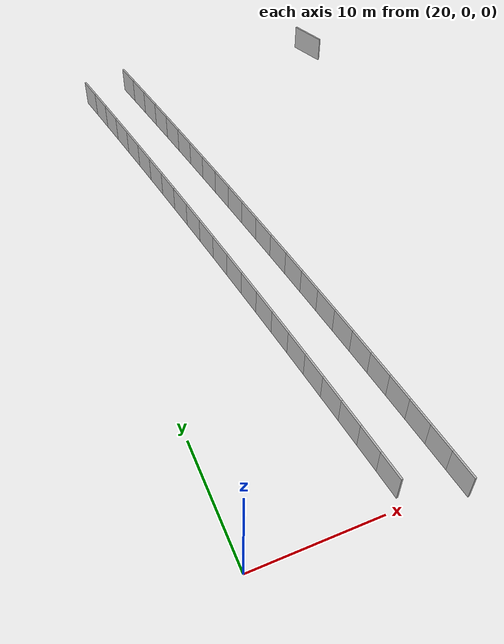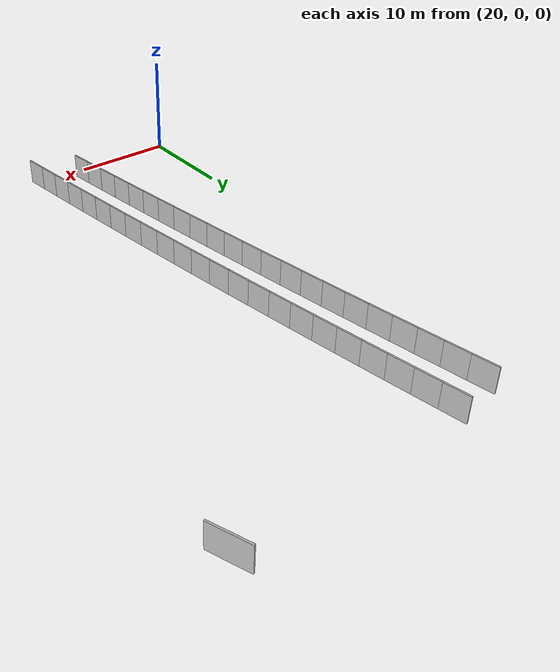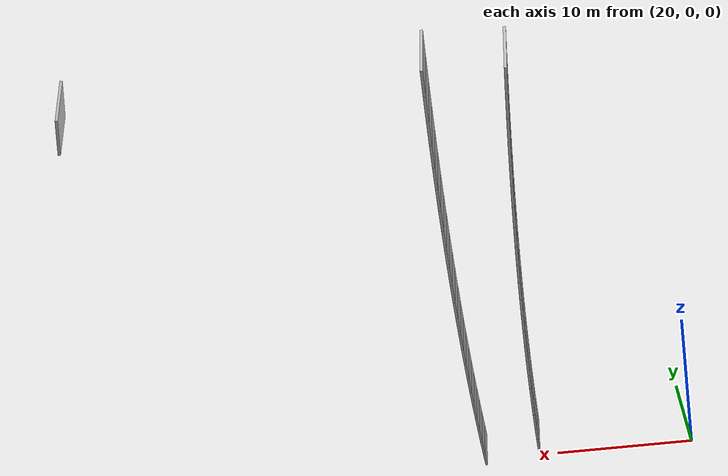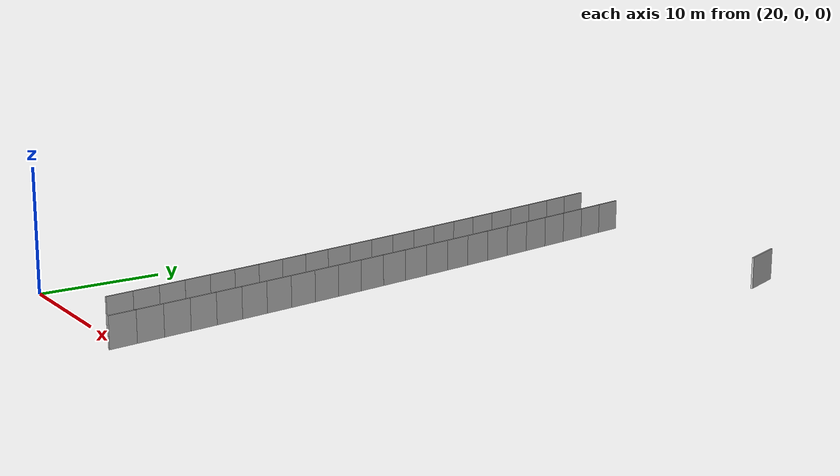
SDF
<?xml version="1.0" ?>
<sdf version="1.6">
  <model name="sps_4627">
    <pose frame="">0 0 0 0 -0 0</pose>
    <static>1</static>
    <self_collide>0</self_collide>
    <allow_auto_disable>0</allow_auto_disable>
    <link name="Wall489">
      <kinematic>0</kinematic>
      <gravity>1</gravity>
      <self_collide>0</self_collide>
      <collision name="collision">
        <geometry>
          <box>
            <size>3.35308 0.15 2.5</size>
          </box>
        </geometry>
        <pose frame="">0 0 0 0 -0 0</pose>
      </collision>
      <visual name="visual">
        <geometry>
          <box>
            <size>3.35308 0.15 2.5</size>
          </box>
        </geometry>
        <pose frame="">0 0 0 0 -0 0</pose>
        <cast_shadows>1</cast_shadows>
        <transparency>0.0</transparency>
      </visual>
      <pose frame="">47.9918 49.0009 1.25 0 0 -1.18641</pose>
    </link>
    <link name="Wall4598">
      <kinematic>0</kinematic>
      <gravity>1</gravity>
      <self_collide>0</self_collide>
      <collision name="collision">
        <geometry>
          <box>
            <size>2.25393 0.15 2.5</size>
          </box>
        </geometry>
        <pose frame="">0 0 0 0 -0 0</pose>
      </collision>
      <visual name="visual">
        <geometry>
          <box>
            <size>2.25393 0.15 2.5</size>
          </box>
        </geometry>
        <pose frame="">0 0 0 0 -0 0</pose>
        <cast_shadows>1</cast_shadows>
        <transparency>0.0</transparency>
      </visual>
      <pose frame="">35.5151 0.127791 1.25 0 -0 1.69211</pose>
    </link>
    <link name="Wall4599">
      <kinematic>0</kinematic>
      <gravity>1</gravity>
      <self_collide>0</self_collide>
      <collision name="collision">
        <geometry>
          <box>
            <size>2.25438 0.15 2.5</size>
          </box>
        </geometry>
        <pose frame="">0 0 0 0 -0 0</pose>
      </collision>
      <visual name="visual">
        <geometry>
          <box>
            <size>2.25438 0.15 2.5</size>
          </box>
        </geometry>
        <pose frame="">0 0 0 0 -0 0</pose>
        <cast_shadows>1</cast_shadows>
        <transparency>0.0</transparency>
      </visual>
      <pose frame="">35.24 2.3651 1.25 0 -0 1.69416</pose>
    </link>
    <link name="Wall4600">
      <kinematic>0</kinematic>
      <gravity>1</gravity>
      <self_collide>0</self_collide>
      <collision name="collision">
        <geometry>
          <box>
            <size>2.25481 0.15 2.5</size>
          </box>
        </geometry>
        <pose frame="">0 0 0 0 -0 0</pose>
      </collision>
      <visual name="visual">
        <geometry>
          <box>
            <size>2.25481 0.15 2.5</size>
          </box>
        </geometry>
        <pose frame="">0 0 0 0 -0 0</pose>
        <cast_shadows>1</cast_shadows>
        <transparency>0.0</transparency>
      </visual>
      <pose frame="">34.9599 4.60222 1.25 0 -0 1.69656</pose>
    </link>
    <link name="Wall4601">
      <kinematic>0</kinematic>
      <gravity>1</gravity>
      <self_collide>0</self_collide>
      <collision name="collision">
        <geometry>
          <box>
            <size>2.25443 0.15 2.5</size>
          </box>
        </geometry>
        <pose frame="">0 0 0 0 -0 0</pose>
      </collision>
      <visual name="visual">
        <geometry>
          <box>
            <size>2.25443 0.15 2.5</size>
          </box>
        </geometry>
        <pose frame="">0 0 0 0 -0 0</pose>
        <cast_shadows>1</cast_shadows>
        <transparency>0.0</transparency>
      </visual>
      <pose frame="">34.6745 6.8387 1.25 0 -0 1.69888</pose>
    </link>
    <link name="Wall4602">
      <kinematic>0</kinematic>
      <gravity>1</gravity>
      <self_collide>0</self_collide>
      <collision name="collision">
        <geometry>
          <box>
            <size>2.25477 0.15 2.5</size>
          </box>
        </geometry>
        <pose frame="">0 0 0 0 -0 0</pose>
      </collision>
      <visual name="visual">
        <geometry>
          <box>
            <size>2.25477 0.15 2.5</size>
          </box>
        </geometry>
        <pose frame="">0 0 0 0 -0 0</pose>
        <cast_shadows>1</cast_shadows>
        <transparency>0.0</transparency>
      </visual>
      <pose frame="">34.3838 9.07448 1.25 0 -0 1.70129</pose>
    </link>
    <link name="Wall4603">
      <kinematic>0</kinematic>
      <gravity>1</gravity>
      <self_collide>0</self_collide>
      <collision name="collision">
        <geometry>
          <box>
            <size>2.25467 0.15 2.5</size>
          </box>
        </geometry>
        <pose frame="">0 0 0 0 -0 0</pose>
      </collision>
      <visual name="visual">
        <geometry>
          <box>
            <size>2.25467 0.15 2.5</size>
          </box>
        </geometry>
        <pose frame="">0 0 0 0 -0 0</pose>
        <cast_shadows>1</cast_shadows>
        <transparency>0.0</transparency>
      </visual>
      <pose frame="">34.0878 11.3097 1.25 0 -0 1.70364</pose>
    </link>
    <link name="Wall4604">
      <kinematic>0</kinematic>
      <gravity>1</gravity>
      <self_collide>0</self_collide>
      <collision name="collision">
        <geometry>
          <box>
            <size>2.25459 0.15 2.5</size>
          </box>
        </geometry>
        <pose frame="">0 0 0 0 -0 0</pose>
      </collision>
      <visual name="visual">
        <geometry>
          <box>
            <size>2.25459 0.15 2.5</size>
          </box>
        </geometry>
        <pose frame="">0 0 0 0 -0 0</pose>
        <cast_shadows>1</cast_shadows>
        <transparency>0.0</transparency>
      </visual>
      <pose frame="">33.7865 13.5441 1.25 0 -0 1.70602</pose>
    </link>
    <link name="Wall4605">
      <kinematic>0</kinematic>
      <gravity>1</gravity>
      <self_collide>0</self_collide>
      <collision name="collision">
        <geometry>
          <box>
            <size>2.25452 0.15 2.5</size>
          </box>
        </geometry>
        <pose frame="">0 0 0 0 -0 0</pose>
      </collision>
      <visual name="visual">
        <geometry>
          <box>
            <size>2.25452 0.15 2.5</size>
          </box>
        </geometry>
        <pose frame="">0 0 0 0 -0 0</pose>
        <cast_shadows>1</cast_shadows>
        <transparency>0.0</transparency>
      </visual>
      <pose frame="">33.4799 15.7777 1.25 0 -0 1.70838</pose>
    </link>
    <link name="Wall4606">
      <kinematic>0</kinematic>
      <gravity>1</gravity>
      <self_collide>0</self_collide>
      <collision name="collision">
        <geometry>
          <box>
            <size>2.25467 0.15 2.5</size>
          </box>
        </geometry>
        <pose frame="">0 0 0 0 -0 0</pose>
      </collision>
      <visual name="visual">
        <geometry>
          <box>
            <size>2.25467 0.15 2.5</size>
          </box>
        </geometry>
        <pose frame="">0 0 0 0 -0 0</pose>
        <cast_shadows>1</cast_shadows>
        <transparency>0.0</transparency>
      </visual>
      <pose frame="">33.168 18.0106 1.25 0 -0 1.7108</pose>
    </link>
    <link name="Wall4607">
      <kinematic>0</kinematic>
      <gravity>1</gravity>
      <self_collide>0</self_collide>
      <collision name="collision">
        <geometry>
          <box>
            <size>2.25464 0.15 2.5</size>
          </box>
        </geometry>
        <pose frame="">0 0 0 0 -0 0</pose>
      </collision>
      <visual name="visual">
        <geometry>
          <box>
            <size>2.25464 0.15 2.5</size>
          </box>
        </geometry>
        <pose frame="">0 0 0 0 -0 0</pose>
        <cast_shadows>1</cast_shadows>
        <transparency>0.0</transparency>
      </visual>
      <pose frame="">32.8506 20.2428 1.25 0 -0 1.71321</pose>
    </link>
    <link name="Wall4608">
      <kinematic>0</kinematic>
      <gravity>1</gravity>
      <self_collide>0</self_collide>
      <collision name="collision">
        <geometry>
          <box>
            <size>2.25478 0.15 2.5</size>
          </box>
        </geometry>
        <pose frame="">0 0 0 0 -0 0</pose>
      </collision>
      <visual name="visual">
        <geometry>
          <box>
            <size>2.25478 0.15 2.5</size>
          </box>
        </geometry>
        <pose frame="">0 0 0 0 -0 0</pose>
        <cast_shadows>1</cast_shadows>
        <transparency>0.0</transparency>
      </visual>
      <pose frame="">32.528 22.4743 1.25 0 -0 1.71553</pose>
    </link>
    <link name="Wall4609">
      <kinematic>0</kinematic>
      <gravity>1</gravity>
      <self_collide>0</self_collide>
      <collision name="collision">
        <geometry>
          <box>
            <size>2.25468 0.15 2.5</size>
          </box>
        </geometry>
        <pose frame="">0 0 0 0 -0 0</pose>
      </collision>
      <visual name="visual">
        <geometry>
          <box>
            <size>2.25468 0.15 2.5</size>
          </box>
        </geometry>
        <pose frame="">0 0 0 0 -0 0</pose>
        <cast_shadows>1</cast_shadows>
        <transparency>0.0</transparency>
      </visual>
      <pose frame="">32.2002 24.7051 1.25 0 -0 1.71786</pose>
    </link>
    <link name="Wall4610">
      <kinematic>0</kinematic>
      <gravity>1</gravity>
      <self_collide>0</self_collide>
      <collision name="collision">
        <geometry>
          <box>
            <size>2.25416 0.15 2.5</size>
          </box>
        </geometry>
        <pose frame="">0 0 0 0 -0 0</pose>
      </collision>
      <visual name="visual">
        <geometry>
          <box>
            <size>2.25416 0.15 2.5</size>
          </box>
        </geometry>
        <pose frame="">0 0 0 0 -0 0</pose>
        <cast_shadows>1</cast_shadows>
        <transparency>0.0</transparency>
      </visual>
      <pose frame="">31.8671 26.9348 1.25 0 -0 1.72033</pose>
    </link>
    <link name="Wall4611">
      <kinematic>0</kinematic>
      <gravity>1</gravity>
      <self_collide>0</self_collide>
      <collision name="collision">
        <geometry>
          <box>
            <size>2.2546 0.15 2.5</size>
          </box>
        </geometry>
        <pose frame="">0 0 0 0 -0 0</pose>
      </collision>
      <visual name="visual">
        <geometry>
          <box>
            <size>2.2546 0.15 2.5</size>
          </box>
        </geometry>
        <pose frame="">0 0 0 0 -0 0</pose>
        <cast_shadows>1</cast_shadows>
        <transparency>0.0</transparency>
      </visual>
      <pose frame="">31.5286 29.1636 1.25 0 -0 1.72271</pose>
    </link>
    <link name="Wall4612">
      <kinematic>0</kinematic>
      <gravity>1</gravity>
      <self_collide>0</self_collide>
      <collision name="collision">
        <geometry>
          <box>
            <size>2.25404 0.15 2.5</size>
          </box>
        </geometry>
        <pose frame="">0 0 0 0 -0 0</pose>
      </collision>
      <visual name="visual">
        <geometry>
          <box>
            <size>2.25404 0.15 2.5</size>
          </box>
        </geometry>
        <pose frame="">0 0 0 0 -0 0</pose>
        <cast_shadows>1</cast_shadows>
        <transparency>0.0</transparency>
      </visual>
      <pose frame="">31.1846 31.3915 1.25 0 -0 1.72535</pose>
    </link>
    <link name="Wall4613">
      <kinematic>0</kinematic>
      <gravity>1</gravity>
      <self_collide>0</self_collide>
      <collision name="collision">
        <geometry>
          <box>
            <size>2.25482 0.15 2.5</size>
          </box>
        </geometry>
        <pose frame="">0 0 0 0 -0 0</pose>
      </collision>
      <visual name="visual">
        <geometry>
          <box>
            <size>2.25482 0.15 2.5</size>
          </box>
        </geometry>
        <pose frame="">0 0 0 0 -0 0</pose>
        <cast_shadows>1</cast_shadows>
        <transparency>0.0</transparency>
      </visual>
      <pose frame="">30.8353 33.6187 1.25 0 -0 1.72738</pose>
    </link>
    <link name="Wall4614">
      <kinematic>0</kinematic>
      <gravity>1</gravity>
      <self_collide>0</self_collide>
      <collision name="collision">
        <geometry>
          <box>
            <size>2.25464 0.15 2.5</size>
          </box>
        </geometry>
        <pose frame="">0 0 0 0 -0 0</pose>
      </collision>
      <visual name="visual">
        <geometry>
          <box>
            <size>2.25464 0.15 2.5</size>
          </box>
        </geometry>
        <pose frame="">0 0 0 0 -0 0</pose>
        <cast_shadows>1</cast_shadows>
        <transparency>0.0</transparency>
      </visual>
      <pose frame="">30.4809 35.8454 1.25 0 -0 1.7298</pose>
    </link>
    <link name="Wall4615">
      <kinematic>0</kinematic>
      <gravity>1</gravity>
      <self_collide>0</self_collide>
      <collision name="collision">
        <geometry>
          <box>
            <size>2.25447 0.15 2.5</size>
          </box>
        </geometry>
        <pose frame="">0 0 0 0 -0 0</pose>
      </collision>
      <visual name="visual">
        <geometry>
          <box>
            <size>2.25447 0.15 2.5</size>
          </box>
        </geometry>
        <pose frame="">0 0 0 0 -0 0</pose>
        <cast_shadows>1</cast_shadows>
        <transparency>0.0</transparency>
      </visual>
      <pose frame="">30.1213 38.0711 1.25 0 -0 1.73223</pose>
    </link>
    <link name="Wall4616">
      <kinematic>0</kinematic>
      <gravity>1</gravity>
      <self_collide>0</self_collide>
      <collision name="collision">
        <geometry>
          <box>
            <size>2.2546 0.15 2.5</size>
          </box>
        </geometry>
        <pose frame="">0 0 0 0 -0 0</pose>
      </collision>
      <visual name="visual">
        <geometry>
          <box>
            <size>2.2546 0.15 2.5</size>
          </box>
        </geometry>
        <pose frame="">0 0 0 0 -0 0</pose>
        <cast_shadows>1</cast_shadows>
        <transparency>0.0</transparency>
      </visual>
      <pose frame="">29.7563 40.2959 1.25 0 -0 1.73458</pose>
    </link>
    <link name="Wall4617">
      <kinematic>0</kinematic>
      <gravity>1</gravity>
      <self_collide>0</self_collide>
      <collision name="collision">
        <geometry>
          <box>
            <size>2.25458 0.15 2.5</size>
          </box>
        </geometry>
        <pose frame="">0 0 0 0 -0 0</pose>
      </collision>
      <visual name="visual">
        <geometry>
          <box>
            <size>2.25458 0.15 2.5</size>
          </box>
        </geometry>
        <pose frame="">0 0 0 0 -0 0</pose>
        <cast_shadows>1</cast_shadows>
        <transparency>0.0</transparency>
      </visual>
      <pose frame="">29.3862 42.5199 1.25 0 -0 1.73683</pose>
    </link>
    <link name="Wall4618">
      <kinematic>0</kinematic>
      <gravity>1</gravity>
      <self_collide>0</self_collide>
      <collision name="collision">
        <geometry>
          <box>
            <size>2.25482 0.15 2.5</size>
          </box>
        </geometry>
        <pose frame="">0 0 0 0 -0 0</pose>
      </collision>
      <visual name="visual">
        <geometry>
          <box>
            <size>2.25482 0.15 2.5</size>
          </box>
        </geometry>
        <pose frame="">0 0 0 0 -0 0</pose>
        <cast_shadows>1</cast_shadows>
        <transparency>0.0</transparency>
      </visual>
      <pose frame="">29.0106 44.7431 1.25 0 -0 1.73942</pose>
    </link>
    <link name="Wall4619">
      <kinematic>0</kinematic>
      <gravity>1</gravity>
      <self_collide>0</self_collide>
      <collision name="collision">
        <geometry>
          <box>
            <size>2.2546 0.15 2.5</size>
          </box>
        </geometry>
        <pose frame="">0 0 0 0 -0 0</pose>
      </collision>
      <visual name="visual">
        <geometry>
          <box>
            <size>2.2546 0.15 2.5</size>
          </box>
        </geometry>
        <pose frame="">0 0 0 0 -0 0</pose>
        <cast_shadows>1</cast_shadows>
        <transparency>0.0</transparency>
      </visual>
      <pose frame="">28.6298 46.9654 1.25 0 -0 1.74158</pose>
    </link>
    <link name="Wall4620">
      <kinematic>0</kinematic>
      <gravity>1</gravity>
      <self_collide>0</self_collide>
      <collision name="collision">
        <geometry>
          <box>
            <size>2.25451 0.15 2.5</size>
          </box>
        </geometry>
        <pose frame="">0 0 0 0 -0 0</pose>
      </collision>
      <visual name="visual">
        <geometry>
          <box>
            <size>2.25451 0.15 2.5</size>
          </box>
        </geometry>
        <pose frame="">0 0 0 0 -0 0</pose>
        <cast_shadows>1</cast_shadows>
        <transparency>0.0</transparency>
      </visual>
      <pose frame="">28.2439 49.1867 1.25 0 -0 1.74403</pose>
    </link>
    <link name="Wall6324">
      <kinematic>0</kinematic>
      <gravity>1</gravity>
      <self_collide>0</self_collide>
      <collision name="collision">
        <geometry>
          <box>
            <size>2.24442 0.15 2.5</size>
          </box>
        </geometry>
        <pose frame="">0 0 0 0 -0 0</pose>
      </collision>
      <visual name="visual">
        <geometry>
          <box>
            <size>2.24442 0.15 2.5</size>
          </box>
        </geometry>
        <pose frame="">0 0 0 0 -0 0</pose>
        <cast_shadows>1</cast_shadows>
        <transparency>0.0</transparency>
      </visual>
      <pose frame="">31.1322 1.85539 1.25 0 -0 1.69419</pose>
    </link>
    <link name="Wall6325">
      <kinematic>0</kinematic>
      <gravity>1</gravity>
      <self_collide>0</self_collide>
      <collision name="collision">
        <geometry>
          <box>
            <size>2.24499 0.15 2.5</size>
          </box>
        </geometry>
        <pose frame="">0 0 0 0 -0 0</pose>
      </collision>
      <visual name="visual">
        <geometry>
          <box>
            <size>2.24499 0.15 2.5</size>
          </box>
        </geometry>
        <pose frame="">0 0 0 0 -0 0</pose>
        <cast_shadows>1</cast_shadows>
        <transparency>0.0</transparency>
      </visual>
      <pose frame="">30.8531 4.08269 1.25 0 -0 1.69665</pose>
    </link>
    <link name="Wall6326">
      <kinematic>0</kinematic>
      <gravity>1</gravity>
      <self_collide>0</self_collide>
      <collision name="collision">
        <geometry>
          <box>
            <size>2.24478 0.15 2.5</size>
          </box>
        </geometry>
        <pose frame="">0 0 0 0 -0 0</pose>
      </collision>
      <visual name="visual">
        <geometry>
          <box>
            <size>2.24478 0.15 2.5</size>
          </box>
        </geometry>
        <pose frame="">0 0 0 0 -0 0</pose>
        <cast_shadows>1</cast_shadows>
        <transparency>0.0</transparency>
      </visual>
      <pose frame="">30.5688 6.30949 1.25 0 -0 1.69891</pose>
    </link>
    <link name="Wall6327">
      <kinematic>0</kinematic>
      <gravity>1</gravity>
      <self_collide>0</self_collide>
      <collision name="collision">
        <geometry>
          <box>
            <size>2.24463 0.15 2.5</size>
          </box>
        </geometry>
        <pose frame="">0 0 0 0 -0 0</pose>
      </collision>
      <visual name="visual">
        <geometry>
          <box>
            <size>2.24463 0.15 2.5</size>
          </box>
        </geometry>
        <pose frame="">0 0 0 0 -0 0</pose>
        <cast_shadows>1</cast_shadows>
        <transparency>0.0</transparency>
      </visual>
      <pose frame="">30.2795 8.53548 1.25 0 -0 1.70117</pose>
    </link>
    <link name="Wall6328">
      <kinematic>0</kinematic>
      <gravity>1</gravity>
      <self_collide>0</self_collide>
      <collision name="collision">
        <geometry>
          <box>
            <size>2.24482 0.15 2.5</size>
          </box>
        </geometry>
        <pose frame="">0 0 0 0 -0 0</pose>
      </collision>
      <visual name="visual">
        <geometry>
          <box>
            <size>2.24482 0.15 2.5</size>
          </box>
        </geometry>
        <pose frame="">0 0 0 0 -0 0</pose>
        <cast_shadows>1</cast_shadows>
        <transparency>0.0</transparency>
      </visual>
      <pose frame="">29.9849 10.7608 1.25 0 -0 1.70365</pose>
    </link>
    <link name="Wall6329">
      <kinematic>0</kinematic>
      <gravity>1</gravity>
      <self_collide>0</self_collide>
      <collision name="collision">
        <geometry>
          <box>
            <size>2.24488 0.15 2.5</size>
          </box>
        </geometry>
        <pose frame="">0 0 0 0 -0 0</pose>
      </collision>
      <visual name="visual">
        <geometry>
          <box>
            <size>2.24488 0.15 2.5</size>
          </box>
        </geometry>
        <pose frame="">0 0 0 0 -0 0</pose>
        <cast_shadows>1</cast_shadows>
        <transparency>0.0</transparency>
      </visual>
      <pose frame="">29.6849 12.9855 1.25 0 -0 1.70609</pose>
    </link>
    <link name="Wall6330">
      <kinematic>0</kinematic>
      <gravity>1</gravity>
      <self_collide>0</self_collide>
      <collision name="collision">
        <geometry>
          <box>
            <size>2.24486 0.15 2.5</size>
          </box>
        </geometry>
        <pose frame="">0 0 0 0 -0 0</pose>
      </collision>
      <visual name="visual">
        <geometry>
          <box>
            <size>2.24486 0.15 2.5</size>
          </box>
        </geometry>
        <pose frame="">0 0 0 0 -0 0</pose>
        <cast_shadows>1</cast_shadows>
        <transparency>0.0</transparency>
      </visual>
      <pose frame="">29.3795 15.2095 1.25 0 -0 1.70843</pose>
    </link>
    <link name="Wall6331">
      <kinematic>0</kinematic>
      <gravity>1</gravity>
      <self_collide>0</self_collide>
      <collision name="collision">
        <geometry>
          <box>
            <size>2.24453 0.15 2.5</size>
          </box>
        </geometry>
        <pose frame="">0 0 0 0 -0 0</pose>
      </collision>
      <visual name="visual">
        <geometry>
          <box>
            <size>2.24453 0.15 2.5</size>
          </box>
        </geometry>
        <pose frame="">0 0 0 0 -0 0</pose>
        <cast_shadows>1</cast_shadows>
        <transparency>0.0</transparency>
      </visual>
      <pose frame="">29.069 17.4326 1.25 0 -0 1.71072</pose>
    </link>
    <link name="Wall6332">
      <kinematic>0</kinematic>
      <gravity>1</gravity>
      <self_collide>0</self_collide>
      <collision name="collision">
        <geometry>
          <box>
            <size>2.24489 0.15 2.5</size>
          </box>
        </geometry>
        <pose frame="">0 0 0 0 -0 0</pose>
      </collision>
      <visual name="visual">
        <geometry>
          <box>
            <size>2.24489 0.15 2.5</size>
          </box>
        </geometry>
        <pose frame="">0 0 0 0 -0 0</pose>
        <cast_shadows>1</cast_shadows>
        <transparency>0.0</transparency>
      </visual>
      <pose frame="">28.7531 19.655 1.25 0 -0 1.7132</pose>
    </link>
    <link name="Wall6333">
      <kinematic>0</kinematic>
      <gravity>1</gravity>
      <self_collide>0</self_collide>
      <collision name="collision">
        <geometry>
          <box>
            <size>2.24473 0.15 2.5</size>
          </box>
        </geometry>
        <pose frame="">0 0 0 0 -0 0</pose>
      </collision>
      <visual name="visual">
        <geometry>
          <box>
            <size>2.24473 0.15 2.5</size>
          </box>
        </geometry>
        <pose frame="">0 0 0 0 -0 0</pose>
        <cast_shadows>1</cast_shadows>
        <transparency>0.0</transparency>
      </visual>
      <pose frame="">28.4319 21.8767 1.25 0 -0 1.71555</pose>
    </link>
    <link name="Wall6334">
      <kinematic>0</kinematic>
      <gravity>1</gravity>
      <self_collide>0</self_collide>
      <collision name="collision">
        <geometry>
          <box>
            <size>2.24482 0.15 2.5</size>
          </box>
        </geometry>
        <pose frame="">0 0 0 0 -0 0</pose>
      </collision>
      <visual name="visual">
        <geometry>
          <box>
            <size>2.24482 0.15 2.5</size>
          </box>
        </geometry>
        <pose frame="">0 0 0 0 -0 0</pose>
        <cast_shadows>1</cast_shadows>
        <transparency>0.0</transparency>
      </visual>
      <pose frame="">28.1056 24.0976 1.25 0 -0 1.71788</pose>
    </link>
    <link name="Wall6335">
      <kinematic>0</kinematic>
      <gravity>1</gravity>
      <self_collide>0</self_collide>
      <collision name="collision">
        <geometry>
          <box>
            <size>2.24484 0.15 2.5</size>
          </box>
        </geometry>
        <pose frame="">0 0 0 0 -0 0</pose>
      </collision>
      <visual name="visual">
        <geometry>
          <box>
            <size>2.24484 0.15 2.5</size>
          </box>
        </geometry>
        <pose frame="">0 0 0 0 -0 0</pose>
        <cast_shadows>1</cast_shadows>
        <transparency>0.0</transparency>
      </visual>
      <pose frame="">27.7739 26.3178 1.25 0 -0 1.72032</pose>
    </link>
    <link name="Wall6336">
      <kinematic>0</kinematic>
      <gravity>1</gravity>
      <self_collide>0</self_collide>
      <collision name="collision">
        <geometry>
          <box>
            <size>2.24462 0.15 2.5</size>
          </box>
        </geometry>
        <pose frame="">0 0 0 0 -0 0</pose>
      </collision>
      <visual name="visual">
        <geometry>
          <box>
            <size>2.24462 0.15 2.5</size>
          </box>
        </geometry>
        <pose frame="">0 0 0 0 -0 0</pose>
        <cast_shadows>1</cast_shadows>
        <transparency>0.0</transparency>
      </visual>
      <pose frame="">27.4369 28.5371 1.25 0 -0 1.72259</pose>
    </link>
    <link name="Wall6337">
      <kinematic>0</kinematic>
      <gravity>1</gravity>
      <self_collide>0</self_collide>
      <collision name="collision">
        <geometry>
          <box>
            <size>2.24489 0.15 2.5</size>
          </box>
        </geometry>
        <pose frame="">0 0 0 0 -0 0</pose>
      </collision>
      <visual name="visual">
        <geometry>
          <box>
            <size>2.24489 0.15 2.5</size>
          </box>
        </geometry>
        <pose frame="">0 0 0 0 -0 0</pose>
        <cast_shadows>1</cast_shadows>
        <transparency>0.0</transparency>
      </visual>
      <pose frame="">27.0947 30.7556 1.25 0 -0 1.72516</pose>
    </link>
    <link name="Wall6338">
      <kinematic>0</kinematic>
      <gravity>1</gravity>
      <self_collide>0</self_collide>
      <collision name="collision">
        <geometry>
          <box>
            <size>2.24418 0.15 2.5</size>
          </box>
        </geometry>
        <pose frame="">0 0 0 0 -0 0</pose>
      </collision>
      <visual name="visual">
        <geometry>
          <box>
            <size>2.24418 0.15 2.5</size>
          </box>
        </geometry>
        <pose frame="">0 0 0 0 -0 0</pose>
        <cast_shadows>1</cast_shadows>
        <transparency>0.0</transparency>
      </visual>
      <pose frame="">26.7468 32.973 1.25 0 -0 1.72769</pose>
    </link>
    <link name="Wall6339">
      <kinematic>0</kinematic>
      <gravity>1</gravity>
      <self_collide>0</self_collide>
      <collision name="collision">
        <geometry>
          <box>
            <size>2.24483 0.15 2.5</size>
          </box>
        </geometry>
        <pose frame="">0 0 0 0 -0 0</pose>
      </collision>
      <visual name="visual">
        <geometry>
          <box>
            <size>2.24483 0.15 2.5</size>
          </box>
        </geometry>
        <pose frame="">0 0 0 0 -0 0</pose>
        <cast_shadows>1</cast_shadows>
        <transparency>0.0</transparency>
      </visual>
      <pose frame="">26.3939 35.1896 1.25 0 -0 1.72968</pose>
    </link>
    <link name="Wall6340">
      <kinematic>0</kinematic>
      <gravity>1</gravity>
      <self_collide>0</self_collide>
      <collision name="collision">
        <geometry>
          <box>
            <size>2.24483 0.15 2.5</size>
          </box>
        </geometry>
        <pose frame="">0 0 0 0 -0 0</pose>
      </collision>
      <visual name="visual">
        <geometry>
          <box>
            <size>2.24483 0.15 2.5</size>
          </box>
        </geometry>
        <pose frame="">0 0 0 0 -0 0</pose>
        <cast_shadows>1</cast_shadows>
        <transparency>0.0</transparency>
      </visual>
      <pose frame="">26.0358 37.4057 1.25 0 -0 1.73224</pose>
    </link>
    <link name="Wall6341">
      <kinematic>0</kinematic>
      <gravity>1</gravity>
      <self_collide>0</self_collide>
      <collision name="collision">
        <geometry>
          <box>
            <size>2.24463 0.15 2.5</size>
          </box>
        </geometry>
        <pose frame="">0 0 0 0 -0 0</pose>
      </collision>
      <visual name="visual">
        <geometry>
          <box>
            <size>2.24463 0.15 2.5</size>
          </box>
        </geometry>
        <pose frame="">0 0 0 0 -0 0</pose>
        <cast_shadows>1</cast_shadows>
        <transparency>0.0</transparency>
      </visual>
      <pose frame="">25.6724 39.6208 1.25 0 -0 1.73457</pose>
    </link>
    <link name="Wall6342">
      <kinematic>0</kinematic>
      <gravity>1</gravity>
      <self_collide>0</self_collide>
      <collision name="collision">
        <geometry>
          <box>
            <size>2.24489 0.15 2.5</size>
          </box>
        </geometry>
        <pose frame="">0 0 0 0 -0 0</pose>
      </collision>
      <visual name="visual">
        <geometry>
          <box>
            <size>2.24489 0.15 2.5</size>
          </box>
        </geometry>
        <pose frame="">0 0 0 0 -0 0</pose>
        <cast_shadows>1</cast_shadows>
        <transparency>0.0</transparency>
      </visual>
      <pose frame="">25.3039 41.8351 1.25 0 -0 1.73692</pose>
    </link>
    <link name="Wall6343">
      <kinematic>0</kinematic>
      <gravity>1</gravity>
      <self_collide>0</self_collide>
      <collision name="collision">
        <geometry>
          <box>
            <size>2.2448 0.15 2.5</size>
          </box>
        </geometry>
        <pose frame="">0 0 0 0 -0 0</pose>
      </collision>
      <visual name="visual">
        <geometry>
          <box>
            <size>2.2448 0.15 2.5</size>
          </box>
        </geometry>
        <pose frame="">0 0 0 0 -0 0</pose>
        <cast_shadows>1</cast_shadows>
        <transparency>0.0</transparency>
      </visual>
      <pose frame="">24.93 44.0486 1.25 0 -0 1.73927</pose>
    </link>
    <link name="Wall6344">
      <kinematic>0</kinematic>
      <gravity>1</gravity>
      <self_collide>0</self_collide>
      <collision name="collision">
        <geometry>
          <box>
            <size>2.24468 0.15 2.5</size>
          </box>
        </geometry>
        <pose frame="">0 0 0 0 -0 0</pose>
      </collision>
      <visual name="visual">
        <geometry>
          <box>
            <size>2.24468 0.15 2.5</size>
          </box>
        </geometry>
        <pose frame="">0 0 0 0 -0 0</pose>
        <cast_shadows>1</cast_shadows>
        <transparency>0.0</transparency>
      </visual>
      <pose frame="">24.551 46.2611 1.25 0 -0 1.74171</pose>
    </link>
    <link name="Wall6345">
      <kinematic>0</kinematic>
      <gravity>1</gravity>
      <self_collide>0</self_collide>
      <collision name="collision">
        <geometry>
          <box>
            <size>2.24486 0.15 2.5</size>
          </box>
        </geometry>
        <pose frame="">0 0 0 0 -0 0</pose>
      </collision>
      <visual name="visual">
        <geometry>
          <box>
            <size>2.24486 0.15 2.5</size>
          </box>
        </geometry>
        <pose frame="">0 0 0 0 -0 0</pose>
        <cast_shadows>1</cast_shadows>
        <transparency>0.0</transparency>
      </visual>
      <pose frame="">24.1666 48.4727 1.25 0 -0 1.74407</pose>
    </link>
  </model>
</sdf>
